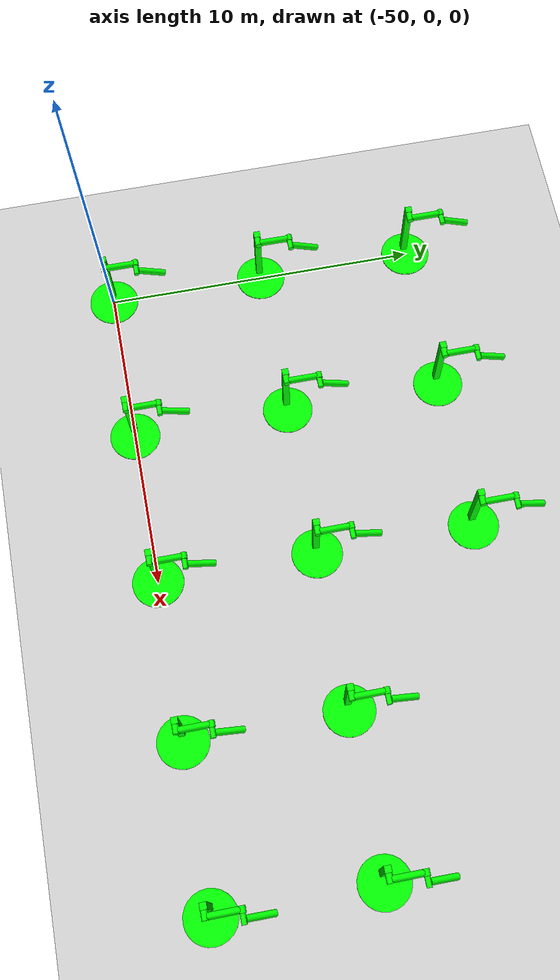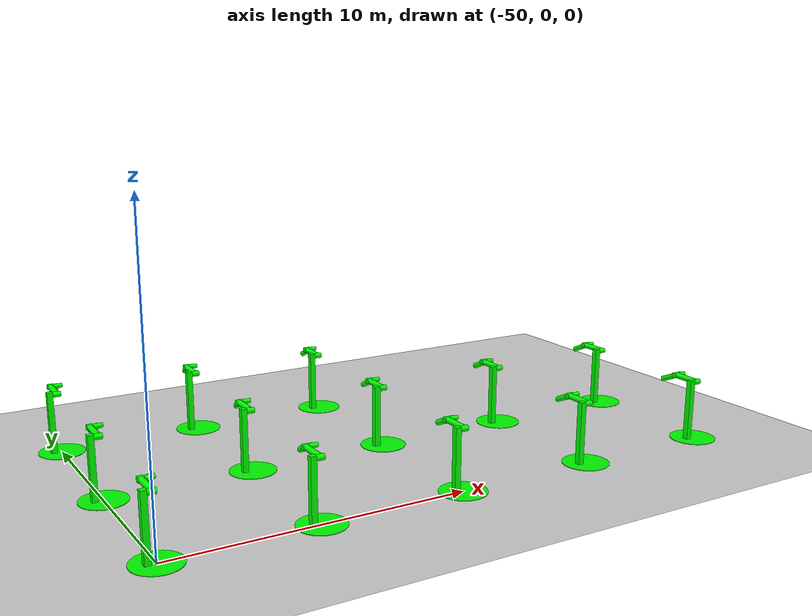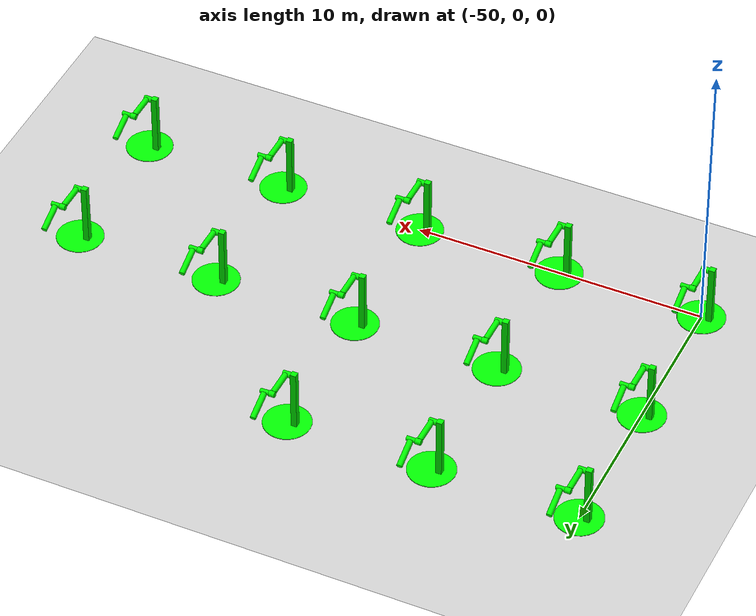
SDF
<sdf version="1.6">
 <world name="double_pendulums">
  <model name="ground_plane">
   <static>true</static>
   <link name="link">
    <collision name="collision">
     <geometry><plane><normal>0 0 1</normal><size>100 100</size></plane></geometry>
    </collision>
    <visual name="visual">
     <geometry><plane><normal>0 0 1</normal><size>100 100</size></plane></geometry>
     <material>
      <ambient>0.8 0.8 0.8 1</ambient>
      <diffuse>0.8 0.8 0.8 1</diffuse>
      <specular>0.8 0.8 0.8 1</specular>
     </material>
    </visual>
   </link>
  </model>
  <model name="dbl_pendulum_0">
   <pose>-50 0 0 0 0 0</pose>
   <link name="base">
    <inertial><mass>100</mass></inertial>
    <visual name="vis_plate_on_ground">
     <pose>0 0 0.01 0 0 0</pose>
     <geometry><cylinder><radius>0.8</radius><length>0.02</length></cylinder></geometry>
     <material><ambient>0 1 0 1</ambient><diffuse>0 1 0 1</diffuse><specular>0 1 0 1</specular></material>
    </visual>
    <visual name="vis_pole">
     <pose>-0.275 0 1.1 0 0 0</pose>
     <geometry><box><size>0.2 0.2 2.2</size></box></geometry>
     <material><ambient>0 1 0 1</ambient><diffuse>0 1 0 1</diffuse><specular>0 1 0 1</specular></material>
    </visual>
    <collision name="col_plate_on_ground">
     <pose>0 0 0.01 0 0 0</pose>
     <geometry><cylinder><radius>0.8</radius><length>0.02</length></cylinder></geometry>
    </collision>
    <collision name="col_pole">
     <pose>-0.275 0 1.1 0 0 0</pose>
     <geometry><box><size>0.2 0.2 2.2</size></box></geometry>
    </collision>
   </link>
   <link name="upper_link">
    <pose>0 0 2.1 -1.5708 0 0</pose>
    <inertial><pose>0 0 0.5 0 0 0</pose></inertial>
    <visual name="vis_upper_joint">
     <pose>-0.05 0 0 0 1.5708 0</pose>
     <geometry><cylinder><radius>0.1</radius><length>0.3</length></cylinder></geometry>
     <material><ambient>0 1 0 1</ambient><diffuse>0 1 0 1</diffuse><specular>0 1 0 1</specular></material>
    </visual>
    <visual name="vis_lower_joint">
     <pose>0 0 1.0 0 1.5708 0</pose>
     <geometry><cylinder><radius>0.1</radius><length>0.2</length></cylinder></geometry>
     <material><ambient>0 1 0 1</ambient><diffuse>0 1 0 1</diffuse><specular>0 1 0 1</specular></material>
    </visual>
    <visual name="vis_cylinder">
     <pose>0 0 0.5 0 0 0</pose>
     <geometry><cylinder><radius>0.1</radius><length>0.9</length></cylinder></geometry>
     <material><ambient>0 1 0 1</ambient><diffuse>0 1 0 1</diffuse><specular>0 1 0 1</specular></material>
    </visual>
    <collision name="col_upper_joint">
     <pose>-0.05 0 0 0 1.5708 0</pose>
     <geometry><cylinder><radius>0.1</radius><length>0.3</length></cylinder></geometry>
    </collision>
    <collision name="col_lower_joint">
     <pose>0 0 1.0 0 1.5708 0</pose>
     <geometry><cylinder><radius>0.1</radius><length>0.2</length></cylinder></geometry>
    </collision>
    <collision name="col_cylinder">
     <pose>0 0 0.5 0 0 0</pose>
     <geometry><cylinder><radius>0.1</radius><length>0.9</length></cylinder></geometry>
    </collision>
   </link>
   <link name="lower_link">
    <pose>0.25 1.0 2.1 -2 0 0</pose>
    <inertial><pose>0 0 0.5 0 0 0</pose></inertial>
    <visual name="vis_lower_joint">
     <pose>0 0 0 0 1.5708 0</pose>
     <geometry><cylinder><radius>0.08</radius><length>0.3</length></cylinder></geometry>
     <material><ambient>0 1 0 1</ambient><diffuse>0 1 0 1</diffuse><specular>0 1 0 1</specular></material>
    </visual>
    <visual name="vis_cylinder">
     <pose>0 0 0.5 0 0 0</pose>
     <geometry><cylinder><radius>0.1</radius><length>0.9</length></cylinder></geometry>
     <material><ambient>0 1 0 1</ambient><diffuse>0 1 0 1</diffuse><specular>0 1 0 1</specular></material>
    </visual>
    <collision name="col_lower_joint">
     <pose>0 0 0 0 1.5708 0</pose>
     <geometry><cylinder><radius>0.08</radius><length>0.3</length></cylinder></geometry>
    </collision>
    <collision name="col_cylinder">
     <pose>0 0 0.5 0 0 0</pose>
     <geometry><cylinder><radius>0.1</radius><length>0.9</length></cylinder></geometry>
    </collision>
   </link>
   <joint name="upper_joint" type="revolute">
    <parent>base</parent>
    <child>upper_link</child>
    <axis><xyz>1.0 0 0</xyz></axis>
   </joint>
   <joint name="lower_joint" type="revolute">
    <parent>upper_link</parent>
    <child>lower_link</child>
    <axis><xyz>1.0 0 0</xyz></axis>
   </joint>
  </model>
  <model name="dbl_pendulum_1">
   <pose>-45 0 0 0 0 0</pose>
   <link name="base">
    <inertial><mass>100</mass></inertial>
    <visual name="vis_plate_on_ground">
     <pose>0 0 0.01 0 0 0</pose>
     <geometry><cylinder><radius>0.8</radius><length>0.02</length></cylinder></geometry>
     <material><ambient>0 1 0 1</ambient><diffuse>0 1 0 1</diffuse><specular>0 1 0 1</specular></material>
    </visual>
    <visual name="vis_pole">
     <pose>-0.275 0 1.1 0 0 0</pose>
     <geometry><box><size>0.2 0.2 2.2</size></box></geometry>
     <material><ambient>0 1 0 1</ambient><diffuse>0 1 0 1</diffuse><specular>0 1 0 1</specular></material>
    </visual>
    <collision name="col_plate_on_ground">
     <pose>0 0 0.01 0 0 0</pose>
     <geometry><cylinder><radius>0.8</radius><length>0.02</length></cylinder></geometry>
    </collision>
    <collision name="col_pole">
     <pose>-0.275 0 1.1 0 0 0</pose>
     <geometry><box><size>0.2 0.2 2.2</size></box></geometry>
    </collision>
   </link>
   <link name="upper_link">
    <pose>0 0 2.1 -1.5708 0 0</pose>
    <inertial><pose>0 0 0.5 0 0 0</pose></inertial>
    <visual name="vis_upper_joint">
     <pose>-0.05 0 0 0 1.5708 0</pose>
     <geometry><cylinder><radius>0.1</radius><length>0.3</length></cylinder></geometry>
     <material><ambient>0 1 0 1</ambient><diffuse>0 1 0 1</diffuse><specular>0 1 0 1</specular></material>
    </visual>
    <visual name="vis_lower_joint">
     <pose>0 0 1.0 0 1.5708 0</pose>
     <geometry><cylinder><radius>0.1</radius><length>0.2</length></cylinder></geometry>
     <material><ambient>0 1 0 1</ambient><diffuse>0 1 0 1</diffuse><specular>0 1 0 1</specular></material>
    </visual>
    <visual name="vis_cylinder">
     <pose>0 0 0.5 0 0 0</pose>
     <geometry><cylinder><radius>0.1</radius><length>0.9</length></cylinder></geometry>
     <material><ambient>0 1 0 1</ambient><diffuse>0 1 0 1</diffuse><specular>0 1 0 1</specular></material>
    </visual>
    <collision name="col_upper_joint">
     <pose>-0.05 0 0 0 1.5708 0</pose>
     <geometry><cylinder><radius>0.1</radius><length>0.3</length></cylinder></geometry>
    </collision>
    <collision name="col_lower_joint">
     <pose>0 0 1.0 0 1.5708 0</pose>
     <geometry><cylinder><radius>0.1</radius><length>0.2</length></cylinder></geometry>
    </collision>
    <collision name="col_cylinder">
     <pose>0 0 0.5 0 0 0</pose>
     <geometry><cylinder><radius>0.1</radius><length>0.9</length></cylinder></geometry>
    </collision>
   </link>
   <link name="lower_link">
    <pose>0.25 1.0 2.1 -2 0 0</pose>
    <inertial><pose>0 0 0.5 0 0 0</pose></inertial>
    <visual name="vis_lower_joint">
     <pose>0 0 0 0 1.5708 0</pose>
     <geometry><cylinder><radius>0.08</radius><length>0.3</length></cylinder></geometry>
     <material><ambient>0 1 0 1</ambient><diffuse>0 1 0 1</diffuse><specular>0 1 0 1</specular></material>
    </visual>
    <visual name="vis_cylinder">
     <pose>0 0 0.5 0 0 0</pose>
     <geometry><cylinder><radius>0.1</radius><length>0.9</length></cylinder></geometry>
     <material><ambient>0 1 0 1</ambient><diffuse>0 1 0 1</diffuse><specular>0 1 0 1</specular></material>
    </visual>
    <collision name="col_lower_joint">
     <pose>0 0 0 0 1.5708 0</pose>
     <geometry><cylinder><radius>0.08</radius><length>0.3</length></cylinder></geometry>
    </collision>
    <collision name="col_cylinder">
     <pose>0 0 0.5 0 0 0</pose>
     <geometry><cylinder><radius>0.1</radius><length>0.9</length></cylinder></geometry>
    </collision>
   </link>
   <joint name="upper_joint" type="revolute">
    <parent>base</parent>
    <child>upper_link</child>
    <axis><xyz>1.0 0 0</xyz></axis>
   </joint>
   <joint name="lower_joint" type="revolute">
    <parent>upper_link</parent>
    <child>lower_link</child>
    <axis><xyz>1.0 0 0</xyz></axis>
   </joint>
  </model>
  <model name="dbl_pendulum_2">
   <pose>-40 0 0 0 0 0</pose>
   <link name="base">
    <inertial><mass>100</mass></inertial>
    <visual name="vis_plate_on_ground">
     <pose>0 0 0.01 0 0 0</pose>
     <geometry><cylinder><radius>0.8</radius><length>0.02</length></cylinder></geometry>
     <material><ambient>0 1 0 1</ambient><diffuse>0 1 0 1</diffuse><specular>0 1 0 1</specular></material>
    </visual>
    <visual name="vis_pole">
     <pose>-0.275 0 1.1 0 0 0</pose>
     <geometry><box><size>0.2 0.2 2.2</size></box></geometry>
     <material><ambient>0 1 0 1</ambient><diffuse>0 1 0 1</diffuse><specular>0 1 0 1</specular></material>
    </visual>
    <collision name="col_plate_on_ground">
     <pose>0 0 0.01 0 0 0</pose>
     <geometry><cylinder><radius>0.8</radius><length>0.02</length></cylinder></geometry>
    </collision>
    <collision name="col_pole">
     <pose>-0.275 0 1.1 0 0 0</pose>
     <geometry><box><size>0.2 0.2 2.2</size></box></geometry>
    </collision>
   </link>
   <link name="upper_link">
    <pose>0 0 2.1 -1.5708 0 0</pose>
    <inertial><pose>0 0 0.5 0 0 0</pose></inertial>
    <visual name="vis_upper_joint">
     <pose>-0.05 0 0 0 1.5708 0</pose>
     <geometry><cylinder><radius>0.1</radius><length>0.3</length></cylinder></geometry>
     <material><ambient>0 1 0 1</ambient><diffuse>0 1 0 1</diffuse><specular>0 1 0 1</specular></material>
    </visual>
    <visual name="vis_lower_joint">
     <pose>0 0 1.0 0 1.5708 0</pose>
     <geometry><cylinder><radius>0.1</radius><length>0.2</length></cylinder></geometry>
     <material><ambient>0 1 0 1</ambient><diffuse>0 1 0 1</diffuse><specular>0 1 0 1</specular></material>
    </visual>
    <visual name="vis_cylinder">
     <pose>0 0 0.5 0 0 0</pose>
     <geometry><cylinder><radius>0.1</radius><length>0.9</length></cylinder></geometry>
     <material><ambient>0 1 0 1</ambient><diffuse>0 1 0 1</diffuse><specular>0 1 0 1</specular></material>
    </visual>
    <collision name="col_upper_joint">
     <pose>-0.05 0 0 0 1.5708 0</pose>
     <geometry><cylinder><radius>0.1</radius><length>0.3</length></cylinder></geometry>
    </collision>
    <collision name="col_lower_joint">
     <pose>0 0 1.0 0 1.5708 0</pose>
     <geometry><cylinder><radius>0.1</radius><length>0.2</length></cylinder></geometry>
    </collision>
    <collision name="col_cylinder">
     <pose>0 0 0.5 0 0 0</pose>
     <geometry><cylinder><radius>0.1</radius><length>0.9</length></cylinder></geometry>
    </collision>
   </link>
   <link name="lower_link">
    <pose>0.25 1.0 2.1 -2 0 0</pose>
    <inertial><pose>0 0 0.5 0 0 0</pose></inertial>
    <visual name="vis_lower_joint">
     <pose>0 0 0 0 1.5708 0</pose>
     <geometry><cylinder><radius>0.08</radius><length>0.3</length></cylinder></geometry>
     <material><ambient>0 1 0 1</ambient><diffuse>0 1 0 1</diffuse><specular>0 1 0 1</specular></material>
    </visual>
    <visual name="vis_cylinder">
     <pose>0 0 0.5 0 0 0</pose>
     <geometry><cylinder><radius>0.1</radius><length>0.9</length></cylinder></geometry>
     <material><ambient>0 1 0 1</ambient><diffuse>0 1 0 1</diffuse><specular>0 1 0 1</specular></material>
    </visual>
    <collision name="col_lower_joint">
     <pose>0 0 0 0 1.5708 0</pose>
     <geometry><cylinder><radius>0.08</radius><length>0.3</length></cylinder></geometry>
    </collision>
    <collision name="col_cylinder">
     <pose>0 0 0.5 0 0 0</pose>
     <geometry><cylinder><radius>0.1</radius><length>0.9</length></cylinder></geometry>
    </collision>
   </link>
   <joint name="upper_joint" type="revolute">
    <parent>base</parent>
    <child>upper_link</child>
    <axis><xyz>1.0 0 0</xyz></axis>
   </joint>
   <joint name="lower_joint" type="revolute">
    <parent>upper_link</parent>
    <child>lower_link</child>
    <axis><xyz>1.0 0 0</xyz></axis>
   </joint>
  </model>
  <model name="dbl_pendulum_3">
   <pose>-35 0 0 0 0 0</pose>
   <link name="base">
    <inertial><mass>100</mass></inertial>
    <visual name="vis_plate_on_ground">
     <pose>0 0 0.01 0 0 0</pose>
     <geometry><cylinder><radius>0.8</radius><length>0.02</length></cylinder></geometry>
     <material><ambient>0 1 0 1</ambient><diffuse>0 1 0 1</diffuse><specular>0 1 0 1</specular></material>
    </visual>
    <visual name="vis_pole">
     <pose>-0.275 0 1.1 0 0 0</pose>
     <geometry><box><size>0.2 0.2 2.2</size></box></geometry>
     <material><ambient>0 1 0 1</ambient><diffuse>0 1 0 1</diffuse><specular>0 1 0 1</specular></material>
    </visual>
    <collision name="col_plate_on_ground">
     <pose>0 0 0.01 0 0 0</pose>
     <geometry><cylinder><radius>0.8</radius><length>0.02</length></cylinder></geometry>
    </collision>
    <collision name="col_pole">
     <pose>-0.275 0 1.1 0 0 0</pose>
     <geometry><box><size>0.2 0.2 2.2</size></box></geometry>
    </collision>
   </link>
   <link name="upper_link">
    <pose>0 0 2.1 -1.5708 0 0</pose>
    <inertial><pose>0 0 0.5 0 0 0</pose></inertial>
    <visual name="vis_upper_joint">
     <pose>-0.05 0 0 0 1.5708 0</pose>
     <geometry><cylinder><radius>0.1</radius><length>0.3</length></cylinder></geometry>
     <material><ambient>0 1 0 1</ambient><diffuse>0 1 0 1</diffuse><specular>0 1 0 1</specular></material>
    </visual>
    <visual name="vis_lower_joint">
     <pose>0 0 1.0 0 1.5708 0</pose>
     <geometry><cylinder><radius>0.1</radius><length>0.2</length></cylinder></geometry>
     <material><ambient>0 1 0 1</ambient><diffuse>0 1 0 1</diffuse><specular>0 1 0 1</specular></material>
    </visual>
    <visual name="vis_cylinder">
     <pose>0 0 0.5 0 0 0</pose>
     <geometry><cylinder><radius>0.1</radius><length>0.9</length></cylinder></geometry>
     <material><ambient>0 1 0 1</ambient><diffuse>0 1 0 1</diffuse><specular>0 1 0 1</specular></material>
    </visual>
    <collision name="col_upper_joint">
     <pose>-0.05 0 0 0 1.5708 0</pose>
     <geometry><cylinder><radius>0.1</radius><length>0.3</length></cylinder></geometry>
    </collision>
    <collision name="col_lower_joint">
     <pose>0 0 1.0 0 1.5708 0</pose>
     <geometry><cylinder><radius>0.1</radius><length>0.2</length></cylinder></geometry>
    </collision>
    <collision name="col_cylinder">
     <pose>0 0 0.5 0 0 0</pose>
     <geometry><cylinder><radius>0.1</radius><length>0.9</length></cylinder></geometry>
    </collision>
   </link>
   <link name="lower_link">
    <pose>0.25 1.0 2.1 -2 0 0</pose>
    <inertial><pose>0 0 0.5 0 0 0</pose></inertial>
    <visual name="vis_lower_joint">
     <pose>0 0 0 0 1.5708 0</pose>
     <geometry><cylinder><radius>0.08</radius><length>0.3</length></cylinder></geometry>
     <material><ambient>0 1 0 1</ambient><diffuse>0 1 0 1</diffuse><specular>0 1 0 1</specular></material>
    </visual>
    <visual name="vis_cylinder">
     <pose>0 0 0.5 0 0 0</pose>
     <geometry><cylinder><radius>0.1</radius><length>0.9</length></cylinder></geometry>
     <material><ambient>0 1 0 1</ambient><diffuse>0 1 0 1</diffuse><specular>0 1 0 1</specular></material>
    </visual>
    <collision name="col_lower_joint">
     <pose>0 0 0 0 1.5708 0</pose>
     <geometry><cylinder><radius>0.08</radius><length>0.3</length></cylinder></geometry>
    </collision>
    <collision name="col_cylinder">
     <pose>0 0 0.5 0 0 0</pose>
     <geometry><cylinder><radius>0.1</radius><length>0.9</length></cylinder></geometry>
    </collision>
   </link>
   <joint name="upper_joint" type="revolute">
    <parent>base</parent>
    <child>upper_link</child>
    <axis><xyz>1.0 0 0</xyz></axis>
   </joint>
   <joint name="lower_joint" type="revolute">
    <parent>upper_link</parent>
    <child>lower_link</child>
    <axis><xyz>1.0 0 0</xyz></axis>
   </joint>
  </model>
  <model name="dbl_pendulum_4">
   <pose>-30 0 0 0 0 0</pose>
   <link name="base">
    <inertial><mass>100</mass></inertial>
    <visual name="vis_plate_on_ground">
     <pose>0 0 0.01 0 0 0</pose>
     <geometry><cylinder><radius>0.8</radius><length>0.02</length></cylinder></geometry>
     <material><ambient>0 1 0 1</ambient><diffuse>0 1 0 1</diffuse><specular>0 1 0 1</specular></material>
    </visual>
    <visual name="vis_pole">
     <pose>-0.275 0 1.1 0 0 0</pose>
     <geometry><box><size>0.2 0.2 2.2</size></box></geometry>
     <material><ambient>0 1 0 1</ambient><diffuse>0 1 0 1</diffuse><specular>0 1 0 1</specular></material>
    </visual>
    <collision name="col_plate_on_ground">
     <pose>0 0 0.01 0 0 0</pose>
     <geometry><cylinder><radius>0.8</radius><length>0.02</length></cylinder></geometry>
    </collision>
    <collision name="col_pole">
     <pose>-0.275 0 1.1 0 0 0</pose>
     <geometry><box><size>0.2 0.2 2.2</size></box></geometry>
    </collision>
   </link>
   <link name="upper_link">
    <pose>0 0 2.1 -1.5708 0 0</pose>
    <inertial><pose>0 0 0.5 0 0 0</pose></inertial>
    <visual name="vis_upper_joint">
     <pose>-0.05 0 0 0 1.5708 0</pose>
     <geometry><cylinder><radius>0.1</radius><length>0.3</length></cylinder></geometry>
     <material><ambient>0 1 0 1</ambient><diffuse>0 1 0 1</diffuse><specular>0 1 0 1</specular></material>
    </visual>
    <visual name="vis_lower_joint">
     <pose>0 0 1.0 0 1.5708 0</pose>
     <geometry><cylinder><radius>0.1</radius><length>0.2</length></cylinder></geometry>
     <material><ambient>0 1 0 1</ambient><diffuse>0 1 0 1</diffuse><specular>0 1 0 1</specular></material>
    </visual>
    <visual name="vis_cylinder">
     <pose>0 0 0.5 0 0 0</pose>
     <geometry><cylinder><radius>0.1</radius><length>0.9</length></cylinder></geometry>
     <material><ambient>0 1 0 1</ambient><diffuse>0 1 0 1</diffuse><specular>0 1 0 1</specular></material>
    </visual>
    <collision name="col_upper_joint">
     <pose>-0.05 0 0 0 1.5708 0</pose>
     <geometry><cylinder><radius>0.1</radius><length>0.3</length></cylinder></geometry>
    </collision>
    <collision name="col_lower_joint">
     <pose>0 0 1.0 0 1.5708 0</pose>
     <geometry><cylinder><radius>0.1</radius><length>0.2</length></cylinder></geometry>
    </collision>
    <collision name="col_cylinder">
     <pose>0 0 0.5 0 0 0</pose>
     <geometry><cylinder><radius>0.1</radius><length>0.9</length></cylinder></geometry>
    </collision>
   </link>
   <link name="lower_link">
    <pose>0.25 1.0 2.1 -2 0 0</pose>
    <inertial><pose>0 0 0.5 0 0 0</pose></inertial>
    <visual name="vis_lower_joint">
     <pose>0 0 0 0 1.5708 0</pose>
     <geometry><cylinder><radius>0.08</radius><length>0.3</length></cylinder></geometry>
     <material><ambient>0 1 0 1</ambient><diffuse>0 1 0 1</diffuse><specular>0 1 0 1</specular></material>
    </visual>
    <visual name="vis_cylinder">
     <pose>0 0 0.5 0 0 0</pose>
     <geometry><cylinder><radius>0.1</radius><length>0.9</length></cylinder></geometry>
     <material><ambient>0 1 0 1</ambient><diffuse>0 1 0 1</diffuse><specular>0 1 0 1</specular></material>
    </visual>
    <collision name="col_lower_joint">
     <pose>0 0 0 0 1.5708 0</pose>
     <geometry><cylinder><radius>0.08</radius><length>0.3</length></cylinder></geometry>
    </collision>
    <collision name="col_cylinder">
     <pose>0 0 0.5 0 0 0</pose>
     <geometry><cylinder><radius>0.1</radius><length>0.9</length></cylinder></geometry>
    </collision>
   </link>
   <joint name="upper_joint" type="revolute">
    <parent>base</parent>
    <child>upper_link</child>
    <axis><xyz>1.0 0 0</xyz></axis>
   </joint>
   <joint name="lower_joint" type="revolute">
    <parent>upper_link</parent>
    <child>lower_link</child>
    <axis><xyz>1.0 0 0</xyz></axis>
   </joint>
  </model>
  <model name="dbl_pendulum_25">
   <pose>-50 5 0 0 0 0</pose>
   <link name="base">
    <inertial><mass>100</mass></inertial>
    <visual name="vis_plate_on_ground">
     <pose>0 0 0.01 0 0 0</pose>
     <geometry><cylinder><radius>0.8</radius><length>0.02</length></cylinder></geometry>
     <material><ambient>0 1 0 1</ambient><diffuse>0 1 0 1</diffuse><specular>0 1 0 1</specular></material>
    </visual>
    <visual name="vis_pole">
     <pose>-0.275 0 1.1 0 0 0</pose>
     <geometry><box><size>0.2 0.2 2.2</size></box></geometry>
     <material><ambient>0 1 0 1</ambient><diffuse>0 1 0 1</diffuse><specular>0 1 0 1</specular></material>
    </visual>
    <collision name="col_plate_on_ground">
     <pose>0 0 0.01 0 0 0</pose>
     <geometry><cylinder><radius>0.8</radius><length>0.02</length></cylinder></geometry>
    </collision>
    <collision name="col_pole">
     <pose>-0.275 0 1.1 0 0 0</pose>
     <geometry><box><size>0.2 0.2 2.2</size></box></geometry>
    </collision>
   </link>
   <link name="upper_link">
    <pose>0 0 2.1 -1.5708 0 0</pose>
    <inertial><pose>0 0 0.5 0 0 0</pose></inertial>
    <visual name="vis_upper_joint">
     <pose>-0.05 0 0 0 1.5708 0</pose>
     <geometry><cylinder><radius>0.1</radius><length>0.3</length></cylinder></geometry>
     <material><ambient>0 1 0 1</ambient><diffuse>0 1 0 1</diffuse><specular>0 1 0 1</specular></material>
    </visual>
    <visual name="vis_lower_joint">
     <pose>0 0 1.0 0 1.5708 0</pose>
     <geometry><cylinder><radius>0.1</radius><length>0.2</length></cylinder></geometry>
     <material><ambient>0 1 0 1</ambient><diffuse>0 1 0 1</diffuse><specular>0 1 0 1</specular></material>
    </visual>
    <visual name="vis_cylinder">
     <pose>0 0 0.5 0 0 0</pose>
     <geometry><cylinder><radius>0.1</radius><length>0.9</length></cylinder></geometry>
     <material><ambient>0 1 0 1</ambient><diffuse>0 1 0 1</diffuse><specular>0 1 0 1</specular></material>
    </visual>
    <collision name="col_upper_joint">
     <pose>-0.05 0 0 0 1.5708 0</pose>
     <geometry><cylinder><radius>0.1</radius><length>0.3</length></cylinder></geometry>
    </collision>
    <collision name="col_lower_joint">
     <pose>0 0 1.0 0 1.5708 0</pose>
     <geometry><cylinder><radius>0.1</radius><length>0.2</length></cylinder></geometry>
    </collision>
    <collision name="col_cylinder">
     <pose>0 0 0.5 0 0 0</pose>
     <geometry><cylinder><radius>0.1</radius><length>0.9</length></cylinder></geometry>
    </collision>
   </link>
   <link name="lower_link">
    <pose>0.25 1.0 2.1 -2 0 0</pose>
    <inertial><pose>0 0 0.5 0 0 0</pose></inertial>
    <visual name="vis_lower_joint">
     <pose>0 0 0 0 1.5708 0</pose>
     <geometry><cylinder><radius>0.08</radius><length>0.3</length></cylinder></geometry>
     <material><ambient>0 1 0 1</ambient><diffuse>0 1 0 1</diffuse><specular>0 1 0 1</specular></material>
    </visual>
    <visual name="vis_cylinder">
     <pose>0 0 0.5 0 0 0</pose>
     <geometry><cylinder><radius>0.1</radius><length>0.9</length></cylinder></geometry>
     <material><ambient>0 1 0 1</ambient><diffuse>0 1 0 1</diffuse><specular>0 1 0 1</specular></material>
    </visual>
    <collision name="col_lower_joint">
     <pose>0 0 0 0 1.5708 0</pose>
     <geometry><cylinder><radius>0.08</radius><length>0.3</length></cylinder></geometry>
    </collision>
    <collision name="col_cylinder">
     <pose>0 0 0.5 0 0 0</pose>
     <geometry><cylinder><radius>0.1</radius><length>0.9</length></cylinder></geometry>
    </collision>
   </link>
   <joint name="upper_joint" type="revolute">
    <parent>base</parent>
    <child>upper_link</child>
    <axis><xyz>1.0 0 0</xyz></axis>
   </joint>
   <joint name="lower_joint" type="revolute">
    <parent>upper_link</parent>
    <child>lower_link</child>
    <axis><xyz>1.0 0 0</xyz></axis>
   </joint>
  </model>
  <model name="dbl_pendulum_26">
   <pose>-45 5 0 0 0 0</pose>
   <link name="base">
    <inertial><mass>100</mass></inertial>
    <visual name="vis_plate_on_ground">
     <pose>0 0 0.01 0 0 0</pose>
     <geometry><cylinder><radius>0.8</radius><length>0.02</length></cylinder></geometry>
     <material><ambient>0 1 0 1</ambient><diffuse>0 1 0 1</diffuse><specular>0 1 0 1</specular></material>
    </visual>
    <visual name="vis_pole">
     <pose>-0.275 0 1.1 0 0 0</pose>
     <geometry><box><size>0.2 0.2 2.2</size></box></geometry>
     <material><ambient>0 1 0 1</ambient><diffuse>0 1 0 1</diffuse><specular>0 1 0 1</specular></material>
    </visual>
    <collision name="col_plate_on_ground">
     <pose>0 0 0.01 0 0 0</pose>
     <geometry><cylinder><radius>0.8</radius><length>0.02</length></cylinder></geometry>
    </collision>
    <collision name="col_pole">
     <pose>-0.275 0 1.1 0 0 0</pose>
     <geometry><box><size>0.2 0.2 2.2</size></box></geometry>
    </collision>
   </link>
   <link name="upper_link">
    <pose>0 0 2.1 -1.5708 0 0</pose>
    <inertial><pose>0 0 0.5 0 0 0</pose></inertial>
    <visual name="vis_upper_joint">
     <pose>-0.05 0 0 0 1.5708 0</pose>
     <geometry><cylinder><radius>0.1</radius><length>0.3</length></cylinder></geometry>
     <material><ambient>0 1 0 1</ambient><diffuse>0 1 0 1</diffuse><specular>0 1 0 1</specular></material>
    </visual>
    <visual name="vis_lower_joint">
     <pose>0 0 1.0 0 1.5708 0</pose>
     <geometry><cylinder><radius>0.1</radius><length>0.2</length></cylinder></geometry>
     <material><ambient>0 1 0 1</ambient><diffuse>0 1 0 1</diffuse><specular>0 1 0 1</specular></material>
    </visual>
    <visual name="vis_cylinder">
     <pose>0 0 0.5 0 0 0</pose>
     <geometry><cylinder><radius>0.1</radius><length>0.9</length></cylinder></geometry>
     <material><ambient>0 1 0 1</ambient><diffuse>0 1 0 1</diffuse><specular>0 1 0 1</specular></material>
    </visual>
    <collision name="col_upper_joint">
     <pose>-0.05 0 0 0 1.5708 0</pose>
     <geometry><cylinder><radius>0.1</radius><length>0.3</length></cylinder></geometry>
    </collision>
    <collision name="col_lower_joint">
     <pose>0 0 1.0 0 1.5708 0</pose>
     <geometry><cylinder><radius>0.1</radius><length>0.2</length></cylinder></geometry>
    </collision>
    <collision name="col_cylinder">
     <pose>0 0 0.5 0 0 0</pose>
     <geometry><cylinder><radius>0.1</radius><length>0.9</length></cylinder></geometry>
    </collision>
   </link>
   <link name="lower_link">
    <pose>0.25 1.0 2.1 -2 0 0</pose>
    <inertial><pose>0 0 0.5 0 0 0</pose></inertial>
    <visual name="vis_lower_joint">
     <pose>0 0 0 0 1.5708 0</pose>
     <geometry><cylinder><radius>0.08</radius><length>0.3</length></cylinder></geometry>
     <material><ambient>0 1 0 1</ambient><diffuse>0 1 0 1</diffuse><specular>0 1 0 1</specular></material>
    </visual>
    <visual name="vis_cylinder">
     <pose>0 0 0.5 0 0 0</pose>
     <geometry><cylinder><radius>0.1</radius><length>0.9</length></cylinder></geometry>
     <material><ambient>0 1 0 1</ambient><diffuse>0 1 0 1</diffuse><specular>0 1 0 1</specular></material>
    </visual>
    <collision name="col_lower_joint">
     <pose>0 0 0 0 1.5708 0</pose>
     <geometry><cylinder><radius>0.08</radius><length>0.3</length></cylinder></geometry>
    </collision>
    <collision name="col_cylinder">
     <pose>0 0 0.5 0 0 0</pose>
     <geometry><cylinder><radius>0.1</radius><length>0.9</length></cylinder></geometry>
    </collision>
   </link>
   <joint name="upper_joint" type="revolute">
    <parent>base</parent>
    <child>upper_link</child>
    <axis><xyz>1.0 0 0</xyz></axis>
   </joint>
   <joint name="lower_joint" type="revolute">
    <parent>upper_link</parent>
    <child>lower_link</child>
    <axis><xyz>1.0 0 0</xyz></axis>
   </joint>
  </model>
  <model name="dbl_pendulum_27">
   <pose>-40 5 0 0 0 0</pose>
   <link name="base">
    <inertial><mass>100</mass></inertial>
    <visual name="vis_plate_on_ground">
     <pose>0 0 0.01 0 0 0</pose>
     <geometry><cylinder><radius>0.8</radius><length>0.02</length></cylinder></geometry>
     <material><ambient>0 1 0 1</ambient><diffuse>0 1 0 1</diffuse><specular>0 1 0 1</specular></material>
    </visual>
    <visual name="vis_pole">
     <pose>-0.275 0 1.1 0 0 0</pose>
     <geometry><box><size>0.2 0.2 2.2</size></box></geometry>
     <material><ambient>0 1 0 1</ambient><diffuse>0 1 0 1</diffuse><specular>0 1 0 1</specular></material>
    </visual>
    <collision name="col_plate_on_ground">
     <pose>0 0 0.01 0 0 0</pose>
     <geometry><cylinder><radius>0.8</radius><length>0.02</length></cylinder></geometry>
    </collision>
    <collision name="col_pole">
     <pose>-0.275 0 1.1 0 0 0</pose>
     <geometry><box><size>0.2 0.2 2.2</size></box></geometry>
    </collision>
   </link>
   <link name="upper_link">
    <pose>0 0 2.1 -1.5708 0 0</pose>
    <inertial><pose>0 0 0.5 0 0 0</pose></inertial>
    <visual name="vis_upper_joint">
     <pose>-0.05 0 0 0 1.5708 0</pose>
     <geometry><cylinder><radius>0.1</radius><length>0.3</length></cylinder></geometry>
     <material><ambient>0 1 0 1</ambient><diffuse>0 1 0 1</diffuse><specular>0 1 0 1</specular></material>
    </visual>
    <visual name="vis_lower_joint">
     <pose>0 0 1.0 0 1.5708 0</pose>
     <geometry><cylinder><radius>0.1</radius><length>0.2</length></cylinder></geometry>
     <material><ambient>0 1 0 1</ambient><diffuse>0 1 0 1</diffuse><specular>0 1 0 1</specular></material>
    </visual>
    <visual name="vis_cylinder">
     <pose>0 0 0.5 0 0 0</pose>
     <geometry><cylinder><radius>0.1</radius><length>0.9</length></cylinder></geometry>
     <material><ambient>0 1 0 1</ambient><diffuse>0 1 0 1</diffuse><specular>0 1 0 1</specular></material>
    </visual>
    <collision name="col_upper_joint">
     <pose>-0.05 0 0 0 1.5708 0</pose>
     <geometry><cylinder><radius>0.1</radius><length>0.3</length></cylinder></geometry>
    </collision>
    <collision name="col_lower_joint">
     <pose>0 0 1.0 0 1.5708 0</pose>
     <geometry><cylinder><radius>0.1</radius><length>0.2</length></cylinder></geometry>
    </collision>
    <collision name="col_cylinder">
     <pose>0 0 0.5 0 0 0</pose>
     <geometry><cylinder><radius>0.1</radius><length>0.9</length></cylinder></geometry>
    </collision>
   </link>
   <link name="lower_link">
    <pose>0.25 1.0 2.1 -2 0 0</pose>
    <inertial><pose>0 0 0.5 0 0 0</pose></inertial>
    <visual name="vis_lower_joint">
     <pose>0 0 0 0 1.5708 0</pose>
     <geometry><cylinder><radius>0.08</radius><length>0.3</length></cylinder></geometry>
     <material><ambient>0 1 0 1</ambient><diffuse>0 1 0 1</diffuse><specular>0 1 0 1</specular></material>
    </visual>
    <visual name="vis_cylinder">
     <pose>0 0 0.5 0 0 0</pose>
     <geometry><cylinder><radius>0.1</radius><length>0.9</length></cylinder></geometry>
     <material><ambient>0 1 0 1</ambient><diffuse>0 1 0 1</diffuse><specular>0 1 0 1</specular></material>
    </visual>
    <collision name="col_lower_joint">
     <pose>0 0 0 0 1.5708 0</pose>
     <geometry><cylinder><radius>0.08</radius><length>0.3</length></cylinder></geometry>
    </collision>
    <collision name="col_cylinder">
     <pose>0 0 0.5 0 0 0</pose>
     <geometry><cylinder><radius>0.1</radius><length>0.9</length></cylinder></geometry>
    </collision>
   </link>
   <joint name="upper_joint" type="revolute">
    <parent>base</parent>
    <child>upper_link</child>
    <axis><xyz>1.0 0 0</xyz></axis>
   </joint>
   <joint name="lower_joint" type="revolute">
    <parent>upper_link</parent>
    <child>lower_link</child>
    <axis><xyz>1.0 0 0</xyz></axis>
   </joint>
  </model>
  <model name="dbl_pendulum_28">
   <pose>-35 5 0 0 0 0</pose>
   <link name="base">
    <inertial><mass>100</mass></inertial>
    <visual name="vis_plate_on_ground">
     <pose>0 0 0.01 0 0 0</pose>
     <geometry><cylinder><radius>0.8</radius><length>0.02</length></cylinder></geometry>
     <material><ambient>0 1 0 1</ambient><diffuse>0 1 0 1</diffuse><specular>0 1 0 1</specular></material>
    </visual>
    <visual name="vis_pole">
     <pose>-0.275 0 1.1 0 0 0</pose>
     <geometry><box><size>0.2 0.2 2.2</size></box></geometry>
     <material><ambient>0 1 0 1</ambient><diffuse>0 1 0 1</diffuse><specular>0 1 0 1</specular></material>
    </visual>
    <collision name="col_plate_on_ground">
     <pose>0 0 0.01 0 0 0</pose>
     <geometry><cylinder><radius>0.8</radius><length>0.02</length></cylinder></geometry>
    </collision>
    <collision name="col_pole">
     <pose>-0.275 0 1.1 0 0 0</pose>
     <geometry><box><size>0.2 0.2 2.2</size></box></geometry>
    </collision>
   </link>
   <link name="upper_link">
    <pose>0 0 2.1 -1.5708 0 0</pose>
    <inertial><pose>0 0 0.5 0 0 0</pose></inertial>
    <visual name="vis_upper_joint">
     <pose>-0.05 0 0 0 1.5708 0</pose>
     <geometry><cylinder><radius>0.1</radius><length>0.3</length></cylinder></geometry>
     <material><ambient>0 1 0 1</ambient><diffuse>0 1 0 1</diffuse><specular>0 1 0 1</specular></material>
    </visual>
    <visual name="vis_lower_joint">
     <pose>0 0 1.0 0 1.5708 0</pose>
     <geometry><cylinder><radius>0.1</radius><length>0.2</length></cylinder></geometry>
     <material><ambient>0 1 0 1</ambient><diffuse>0 1 0 1</diffuse><specular>0 1 0 1</specular></material>
    </visual>
    <visual name="vis_cylinder">
     <pose>0 0 0.5 0 0 0</pose>
     <geometry><cylinder><radius>0.1</radius><length>0.9</length></cylinder></geometry>
     <material><ambient>0 1 0 1</ambient><diffuse>0 1 0 1</diffuse><specular>0 1 0 1</specular></material>
    </visual>
    <collision name="col_upper_joint">
     <pose>-0.05 0 0 0 1.5708 0</pose>
     <geometry><cylinder><radius>0.1</radius><length>0.3</length></cylinder></geometry>
    </collision>
    <collision name="col_lower_joint">
     <pose>0 0 1.0 0 1.5708 0</pose>
     <geometry><cylinder><radius>0.1</radius><length>0.2</length></cylinder></geometry>
    </collision>
    <collision name="col_cylinder">
     <pose>0 0 0.5 0 0 0</pose>
     <geometry><cylinder><radius>0.1</radius><length>0.9</length></cylinder></geometry>
    </collision>
   </link>
   <link name="lower_link">
    <pose>0.25 1.0 2.1 -2 0 0</pose>
    <inertial><pose>0 0 0.5 0 0 0</pose></inertial>
    <visual name="vis_lower_joint">
     <pose>0 0 0 0 1.5708 0</pose>
     <geometry><cylinder><radius>0.08</radius><length>0.3</length></cylinder></geometry>
     <material><ambient>0 1 0 1</ambient><diffuse>0 1 0 1</diffuse><specular>0 1 0 1</specular></material>
    </visual>
    <visual name="vis_cylinder">
     <pose>0 0 0.5 0 0 0</pose>
     <geometry><cylinder><radius>0.1</radius><length>0.9</length></cylinder></geometry>
     <material><ambient>0 1 0 1</ambient><diffuse>0 1 0 1</diffuse><specular>0 1 0 1</specular></material>
    </visual>
    <collision name="col_lower_joint">
     <pose>0 0 0 0 1.5708 0</pose>
     <geometry><cylinder><radius>0.08</radius><length>0.3</length></cylinder></geometry>
    </collision>
    <collision name="col_cylinder">
     <pose>0 0 0.5 0 0 0</pose>
     <geometry><cylinder><radius>0.1</radius><length>0.9</length></cylinder></geometry>
    </collision>
   </link>
   <joint name="upper_joint" type="revolute">
    <parent>base</parent>
    <child>upper_link</child>
    <axis><xyz>1.0 0 0</xyz></axis>
   </joint>
   <joint name="lower_joint" type="revolute">
    <parent>upper_link</parent>
    <child>lower_link</child>
    <axis><xyz>1.0 0 0</xyz></axis>
   </joint>
  </model>
  <model name="dbl_pendulum_29">
   <pose>-30 5 0 0 0 0</pose>
   <link name="base">
    <inertial><mass>100</mass></inertial>
    <visual name="vis_plate_on_ground">
     <pose>0 0 0.01 0 0 0</pose>
     <geometry><cylinder><radius>0.8</radius><length>0.02</length></cylinder></geometry>
     <material><ambient>0 1 0 1</ambient><diffuse>0 1 0 1</diffuse><specular>0 1 0 1</specular></material>
    </visual>
    <visual name="vis_pole">
     <pose>-0.275 0 1.1 0 0 0</pose>
     <geometry><box><size>0.2 0.2 2.2</size></box></geometry>
     <material><ambient>0 1 0 1</ambient><diffuse>0 1 0 1</diffuse><specular>0 1 0 1</specular></material>
    </visual>
    <collision name="col_plate_on_ground">
     <pose>0 0 0.01 0 0 0</pose>
     <geometry><cylinder><radius>0.8</radius><length>0.02</length></cylinder></geometry>
    </collision>
    <collision name="col_pole">
     <pose>-0.275 0 1.1 0 0 0</pose>
     <geometry><box><size>0.2 0.2 2.2</size></box></geometry>
    </collision>
   </link>
   <link name="upper_link">
    <pose>0 0 2.1 -1.5708 0 0</pose>
    <inertial><pose>0 0 0.5 0 0 0</pose></inertial>
    <visual name="vis_upper_joint">
     <pose>-0.05 0 0 0 1.5708 0</pose>
     <geometry><cylinder><radius>0.1</radius><length>0.3</length></cylinder></geometry>
     <material><ambient>0 1 0 1</ambient><diffuse>0 1 0 1</diffuse><specular>0 1 0 1</specular></material>
    </visual>
    <visual name="vis_lower_joint">
     <pose>0 0 1.0 0 1.5708 0</pose>
     <geometry><cylinder><radius>0.1</radius><length>0.2</length></cylinder></geometry>
     <material><ambient>0 1 0 1</ambient><diffuse>0 1 0 1</diffuse><specular>0 1 0 1</specular></material>
    </visual>
    <visual name="vis_cylinder">
     <pose>0 0 0.5 0 0 0</pose>
     <geometry><cylinder><radius>0.1</radius><length>0.9</length></cylinder></geometry>
     <material><ambient>0 1 0 1</ambient><diffuse>0 1 0 1</diffuse><specular>0 1 0 1</specular></material>
    </visual>
    <collision name="col_upper_joint">
     <pose>-0.05 0 0 0 1.5708 0</pose>
     <geometry><cylinder><radius>0.1</radius><length>0.3</length></cylinder></geometry>
    </collision>
    <collision name="col_lower_joint">
     <pose>0 0 1.0 0 1.5708 0</pose>
     <geometry><cylinder><radius>0.1</radius><length>0.2</length></cylinder></geometry>
    </collision>
    <collision name="col_cylinder">
     <pose>0 0 0.5 0 0 0</pose>
     <geometry><cylinder><radius>0.1</radius><length>0.9</length></cylinder></geometry>
    </collision>
   </link>
   <link name="lower_link">
    <pose>0.25 1.0 2.1 -2 0 0</pose>
    <inertial><pose>0 0 0.5 0 0 0</pose></inertial>
    <visual name="vis_lower_joint">
     <pose>0 0 0 0 1.5708 0</pose>
     <geometry><cylinder><radius>0.08</radius><length>0.3</length></cylinder></geometry>
     <material><ambient>0 1 0 1</ambient><diffuse>0 1 0 1</diffuse><specular>0 1 0 1</specular></material>
    </visual>
    <visual name="vis_cylinder">
     <pose>0 0 0.5 0 0 0</pose>
     <geometry><cylinder><radius>0.1</radius><length>0.9</length></cylinder></geometry>
     <material><ambient>0 1 0 1</ambient><diffuse>0 1 0 1</diffuse><specular>0 1 0 1</specular></material>
    </visual>
    <collision name="col_lower_joint">
     <pose>0 0 0 0 1.5708 0</pose>
     <geometry><cylinder><radius>0.08</radius><length>0.3</length></cylinder></geometry>
    </collision>
    <collision name="col_cylinder">
     <pose>0 0 0.5 0 0 0</pose>
     <geometry><cylinder><radius>0.1</radius><length>0.9</length></cylinder></geometry>
    </collision>
   </link>
   <joint name="upper_joint" type="revolute">
    <parent>base</parent>
    <child>upper_link</child>
    <axis><xyz>1.0 0 0</xyz></axis>
   </joint>
   <joint name="lower_joint" type="revolute">
    <parent>upper_link</parent>
    <child>lower_link</child>
    <axis><xyz>1.0 0 0</xyz></axis>
   </joint>
  </model>
  <model name="dbl_pendulum_50">
   <pose>-50 10 0 0 0 0</pose>
   <link name="base">
    <inertial><mass>100</mass></inertial>
    <visual name="vis_plate_on_ground">
     <pose>0 0 0.01 0 0 0</pose>
     <geometry><cylinder><radius>0.8</radius><length>0.02</length></cylinder></geometry>
     <material><ambient>0 1 0 1</ambient><diffuse>0 1 0 1</diffuse><specular>0 1 0 1</specular></material>
    </visual>
    <visual name="vis_pole">
     <pose>-0.275 0 1.1 0 0 0</pose>
     <geometry><box><size>0.2 0.2 2.2</size></box></geometry>
     <material><ambient>0 1 0 1</ambient><diffuse>0 1 0 1</diffuse><specular>0 1 0 1</specular></material>
    </visual>
    <collision name="col_plate_on_ground">
     <pose>0 0 0.01 0 0 0</pose>
     <geometry><cylinder><radius>0.8</radius><length>0.02</length></cylinder></geometry>
    </collision>
    <collision name="col_pole">
     <pose>-0.275 0 1.1 0 0 0</pose>
     <geometry><box><size>0.2 0.2 2.2</size></box></geometry>
    </collision>
   </link>
   <link name="upper_link">
    <pose>0 0 2.1 -1.5708 0 0</pose>
    <inertial><pose>0 0 0.5 0 0 0</pose></inertial>
    <visual name="vis_upper_joint">
     <pose>-0.05 0 0 0 1.5708 0</pose>
     <geometry><cylinder><radius>0.1</radius><length>0.3</length></cylinder></geometry>
     <material><ambient>0 1 0 1</ambient><diffuse>0 1 0 1</diffuse><specular>0 1 0 1</specular></material>
    </visual>
    <visual name="vis_lower_joint">
     <pose>0 0 1.0 0 1.5708 0</pose>
     <geometry><cylinder><radius>0.1</radius><length>0.2</length></cylinder></geometry>
     <material><ambient>0 1 0 1</ambient><diffuse>0 1 0 1</diffuse><specular>0 1 0 1</specular></material>
    </visual>
    <visual name="vis_cylinder">
     <pose>0 0 0.5 0 0 0</pose>
     <geometry><cylinder><radius>0.1</radius><length>0.9</length></cylinder></geometry>
     <material><ambient>0 1 0 1</ambient><diffuse>0 1 0 1</diffuse><specular>0 1 0 1</specular></material>
    </visual>
    <collision name="col_upper_joint">
     <pose>-0.05 0 0 0 1.5708 0</pose>
     <geometry><cylinder><radius>0.1</radius><length>0.3</length></cylinder></geometry>
    </collision>
    <collision name="col_lower_joint">
     <pose>0 0 1.0 0 1.5708 0</pose>
     <geometry><cylinder><radius>0.1</radius><length>0.2</length></cylinder></geometry>
    </collision>
    <collision name="col_cylinder">
     <pose>0 0 0.5 0 0 0</pose>
     <geometry><cylinder><radius>0.1</radius><length>0.9</length></cylinder></geometry>
    </collision>
   </link>
   <link name="lower_link">
    <pose>0.25 1.0 2.1 -2 0 0</pose>
    <inertial><pose>0 0 0.5 0 0 0</pose></inertial>
    <visual name="vis_lower_joint">
     <pose>0 0 0 0 1.5708 0</pose>
     <geometry><cylinder><radius>0.08</radius><length>0.3</length></cylinder></geometry>
     <material><ambient>0 1 0 1</ambient><diffuse>0 1 0 1</diffuse><specular>0 1 0 1</specular></material>
    </visual>
    <visual name="vis_cylinder">
     <pose>0 0 0.5 0 0 0</pose>
     <geometry><cylinder><radius>0.1</radius><length>0.9</length></cylinder></geometry>
     <material><ambient>0 1 0 1</ambient><diffuse>0 1 0 1</diffuse><specular>0 1 0 1</specular></material>
    </visual>
    <collision name="col_lower_joint">
     <pose>0 0 0 0 1.5708 0</pose>
     <geometry><cylinder><radius>0.08</radius><length>0.3</length></cylinder></geometry>
    </collision>
    <collision name="col_cylinder">
     <pose>0 0 0.5 0 0 0</pose>
     <geometry><cylinder><radius>0.1</radius><length>0.9</length></cylinder></geometry>
    </collision>
   </link>
   <joint name="upper_joint" type="revolute">
    <parent>base</parent>
    <child>upper_link</child>
    <axis><xyz>1.0 0 0</xyz></axis>
   </joint>
   <joint name="lower_joint" type="revolute">
    <parent>upper_link</parent>
    <child>lower_link</child>
    <axis><xyz>1.0 0 0</xyz></axis>
   </joint>
  </model>
  <model name="dbl_pendulum_51">
   <pose>-45 10 0 0 0 0</pose>
   <link name="base">
    <inertial><mass>100</mass></inertial>
    <visual name="vis_plate_on_ground">
     <pose>0 0 0.01 0 0 0</pose>
     <geometry><cylinder><radius>0.8</radius><length>0.02</length></cylinder></geometry>
     <material><ambient>0 1 0 1</ambient><diffuse>0 1 0 1</diffuse><specular>0 1 0 1</specular></material>
    </visual>
    <visual name="vis_pole">
     <pose>-0.275 0 1.1 0 0 0</pose>
     <geometry><box><size>0.2 0.2 2.2</size></box></geometry>
     <material><ambient>0 1 0 1</ambient><diffuse>0 1 0 1</diffuse><specular>0 1 0 1</specular></material>
    </visual>
    <collision name="col_plate_on_ground">
     <pose>0 0 0.01 0 0 0</pose>
     <geometry><cylinder><radius>0.8</radius><length>0.02</length></cylinder></geometry>
    </collision>
    <collision name="col_pole">
     <pose>-0.275 0 1.1 0 0 0</pose>
     <geometry><box><size>0.2 0.2 2.2</size></box></geometry>
    </collision>
   </link>
   <link name="upper_link">
    <pose>0 0 2.1 -1.5708 0 0</pose>
    <inertial><pose>0 0 0.5 0 0 0</pose></inertial>
    <visual name="vis_upper_joint">
     <pose>-0.05 0 0 0 1.5708 0</pose>
     <geometry><cylinder><radius>0.1</radius><length>0.3</length></cylinder></geometry>
     <material><ambient>0 1 0 1</ambient><diffuse>0 1 0 1</diffuse><specular>0 1 0 1</specular></material>
    </visual>
    <visual name="vis_lower_joint">
     <pose>0 0 1.0 0 1.5708 0</pose>
     <geometry><cylinder><radius>0.1</radius><length>0.2</length></cylinder></geometry>
     <material><ambient>0 1 0 1</ambient><diffuse>0 1 0 1</diffuse><specular>0 1 0 1</specular></material>
    </visual>
    <visual name="vis_cylinder">
     <pose>0 0 0.5 0 0 0</pose>
     <geometry><cylinder><radius>0.1</radius><length>0.9</length></cylinder></geometry>
     <material><ambient>0 1 0 1</ambient><diffuse>0 1 0 1</diffuse><specular>0 1 0 1</specular></material>
    </visual>
    <collision name="col_upper_joint">
     <pose>-0.05 0 0 0 1.5708 0</pose>
     <geometry><cylinder><radius>0.1</radius><length>0.3</length></cylinder></geometry>
    </collision>
    <collision name="col_lower_joint">
     <pose>0 0 1.0 0 1.5708 0</pose>
     <geometry><cylinder><radius>0.1</radius><length>0.2</length></cylinder></geometry>
    </collision>
    <collision name="col_cylinder">
     <pose>0 0 0.5 0 0 0</pose>
     <geometry><cylinder><radius>0.1</radius><length>0.9</length></cylinder></geometry>
    </collision>
   </link>
   <link name="lower_link">
    <pose>0.25 1.0 2.1 -2 0 0</pose>
    <inertial><pose>0 0 0.5 0 0 0</pose></inertial>
    <visual name="vis_lower_joint">
     <pose>0 0 0 0 1.5708 0</pose>
     <geometry><cylinder><radius>0.08</radius><length>0.3</length></cylinder></geometry>
     <material><ambient>0 1 0 1</ambient><diffuse>0 1 0 1</diffuse><specular>0 1 0 1</specular></material>
    </visual>
    <visual name="vis_cylinder">
     <pose>0 0 0.5 0 0 0</pose>
     <geometry><cylinder><radius>0.1</radius><length>0.9</length></cylinder></geometry>
     <material><ambient>0 1 0 1</ambient><diffuse>0 1 0 1</diffuse><specular>0 1 0 1</specular></material>
    </visual>
    <collision name="col_lower_joint">
     <pose>0 0 0 0 1.5708 0</pose>
     <geometry><cylinder><radius>0.08</radius><length>0.3</length></cylinder></geometry>
    </collision>
    <collision name="col_cylinder">
     <pose>0 0 0.5 0 0 0</pose>
     <geometry><cylinder><radius>0.1</radius><length>0.9</length></cylinder></geometry>
    </collision>
   </link>
   <joint name="upper_joint" type="revolute">
    <parent>base</parent>
    <child>upper_link</child>
    <axis><xyz>1.0 0 0</xyz></axis>
   </joint>
   <joint name="lower_joint" type="revolute">
    <parent>upper_link</parent>
    <child>lower_link</child>
    <axis><xyz>1.0 0 0</xyz></axis>
   </joint>
  </model>
  <model name="dbl_pendulum_52">
   <pose>-40 10 0 0 0 0</pose>
   <link name="base">
    <inertial><mass>100</mass></inertial>
    <visual name="vis_plate_on_ground">
     <pose>0 0 0.01 0 0 0</pose>
     <geometry><cylinder><radius>0.8</radius><length>0.02</length></cylinder></geometry>
     <material><ambient>0 1 0 1</ambient><diffuse>0 1 0 1</diffuse><specular>0 1 0 1</specular></material>
    </visual>
    <visual name="vis_pole">
     <pose>-0.275 0 1.1 0 0 0</pose>
     <geometry><box><size>0.2 0.2 2.2</size></box></geometry>
     <material><ambient>0 1 0 1</ambient><diffuse>0 1 0 1</diffuse><specular>0 1 0 1</specular></material>
    </visual>
    <collision name="col_plate_on_ground">
     <pose>0 0 0.01 0 0 0</pose>
     <geometry><cylinder><radius>0.8</radius><length>0.02</length></cylinder></geometry>
    </collision>
    <collision name="col_pole">
     <pose>-0.275 0 1.1 0 0 0</pose>
     <geometry><box><size>0.2 0.2 2.2</size></box></geometry>
    </collision>
   </link>
   <link name="upper_link">
    <pose>0 0 2.1 -1.5708 0 0</pose>
    <inertial><pose>0 0 0.5 0 0 0</pose></inertial>
    <visual name="vis_upper_joint">
     <pose>-0.05 0 0 0 1.5708 0</pose>
     <geometry><cylinder><radius>0.1</radius><length>0.3</length></cylinder></geometry>
     <material><ambient>0 1 0 1</ambient><diffuse>0 1 0 1</diffuse><specular>0 1 0 1</specular></material>
    </visual>
    <visual name="vis_lower_joint">
     <pose>0 0 1.0 0 1.5708 0</pose>
     <geometry><cylinder><radius>0.1</radius><length>0.2</length></cylinder></geometry>
     <material><ambient>0 1 0 1</ambient><diffuse>0 1 0 1</diffuse><specular>0 1 0 1</specular></material>
    </visual>
    <visual name="vis_cylinder">
     <pose>0 0 0.5 0 0 0</pose>
     <geometry><cylinder><radius>0.1</radius><length>0.9</length></cylinder></geometry>
     <material><ambient>0 1 0 1</ambient><diffuse>0 1 0 1</diffuse><specular>0 1 0 1</specular></material>
    </visual>
    <collision name="col_upper_joint">
     <pose>-0.05 0 0 0 1.5708 0</pose>
     <geometry><cylinder><radius>0.1</radius><length>0.3</length></cylinder></geometry>
    </collision>
    <collision name="col_lower_joint">
     <pose>0 0 1.0 0 1.5708 0</pose>
     <geometry><cylinder><radius>0.1</radius><length>0.2</length></cylinder></geometry>
    </collision>
    <collision name="col_cylinder">
     <pose>0 0 0.5 0 0 0</pose>
     <geometry><cylinder><radius>0.1</radius><length>0.9</length></cylinder></geometry>
    </collision>
   </link>
   <link name="lower_link">
    <pose>0.25 1.0 2.1 -2 0 0</pose>
    <inertial><pose>0 0 0.5 0 0 0</pose></inertial>
    <visual name="vis_lower_joint">
     <pose>0 0 0 0 1.5708 0</pose>
     <geometry><cylinder><radius>0.08</radius><length>0.3</length></cylinder></geometry>
     <material><ambient>0 1 0 1</ambient><diffuse>0 1 0 1</diffuse><specular>0 1 0 1</specular></material>
    </visual>
    <visual name="vis_cylinder">
     <pose>0 0 0.5 0 0 0</pose>
     <geometry><cylinder><radius>0.1</radius><length>0.9</length></cylinder></geometry>
     <material><ambient>0 1 0 1</ambient><diffuse>0 1 0 1</diffuse><specular>0 1 0 1</specular></material>
    </visual>
    <collision name="col_lower_joint">
     <pose>0 0 0 0 1.5708 0</pose>
     <geometry><cylinder><radius>0.08</radius><length>0.3</length></cylinder></geometry>
    </collision>
    <collision name="col_cylinder">
     <pose>0 0 0.5 0 0 0</pose>
     <geometry><cylinder><radius>0.1</radius><length>0.9</length></cylinder></geometry>
    </collision>
   </link>
   <joint name="upper_joint" type="revolute">
    <parent>base</parent>
    <child>upper_link</child>
    <axis><xyz>1.0 0 0</xyz></axis>
   </joint>
   <joint name="lower_joint" type="revolute">
    <parent>upper_link</parent>
    <child>lower_link</child>
    <axis><xyz>1.0 0 0</xyz></axis>
   </joint>
  </model>
 </world>
</sdf>
